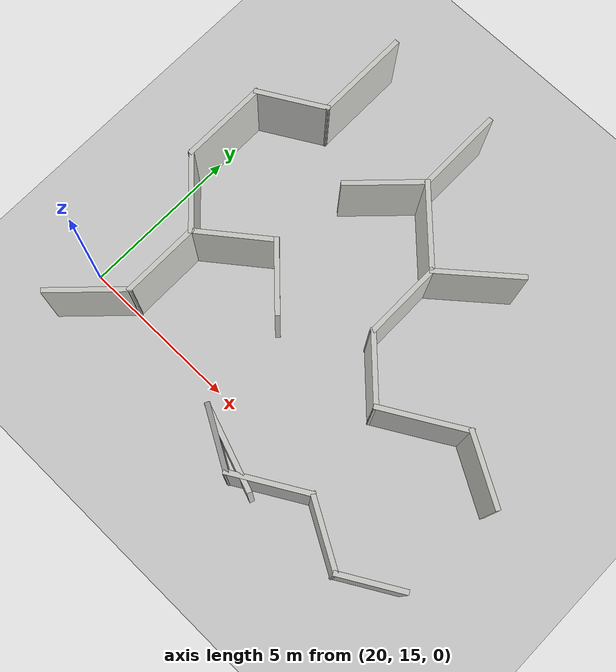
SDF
<sdf version="1.6">
 <world name="default">
  <model name="ground_plane">
   <pose>50 50 0 0 -0 0</pose>
   <static>1</static>
   <link name="link">
    <collision name="collision">
     <geometry><plane><normal>0 0 1</normal><size>100 100</size></plane></geometry>
     <surface><friction><ode><mu>100</mu><mu2>50</mu2></ode></friction></surface>
    </collision>
    <visual name="visual">
     <cast_shadows>0</cast_shadows>
     <geometry><plane><normal>0 0 1</normal><size>100 100</size></plane></geometry>
     <material>
      <script><uri>file://media/materials/scripts/gazebo.material</uri><name>Gazebo/Grey</name></script>
     </material>
    </visual>
   </link>
  </model>
  <model name="maze_1">
   <pose>17.3845 3.82743 0 0 -0 1.57331</pose>
   <link name="Wall_10">
    <collision name="Wall_10_Collision">
     <geometry><box><size>2 0.15 2.5</size></box></geometry>
     <pose>0 0 1.25 0 -0 0</pose>
    </collision>
    <visual name="Wall_10_Visual">
     <pose>0 0 1.25 0 -0 0</pose>
     <geometry><box><size>2 0.15 2.5</size></box></geometry>
     <material>
      <script><uri>file://media/materials/scripts/gazebo.material</uri><name>Gazebo/Grey</name></script>
      <ambient>1 1 1 1</ambient>
     </material>
     <meta><layer>0</layer></meta>
    </visual>
    <pose>10.0085 -8.88058 0 0 -0 -2.0944</pose>
   </link>
   <link name="Wall_11">
    <collision name="Wall_11_Collision">
     <geometry><box><size>2.5 0.15 2.5</size></box></geometry>
     <pose>0 0 1.25 0 -0 0</pose>
    </collision>
    <visual name="Wall_11_Visual">
     <pose>0 0 1.25 0 -0 0</pose>
     <geometry><box><size>2.5 0.15 2.5</size></box></geometry>
     <material>
      <script><uri>file://media/materials/scripts/gazebo.material</uri><name>Gazebo/CeilingTiled</name></script>
      <ambient>1 1 1 1</ambient>
     </material>
     <meta><layer>0</layer></meta>
    </visual>
    <pose>10.1335 -10.6992 0 0 -0 -1.0472</pose>
   </link>
   <link name="Wall_12">
    <collision name="Wall_12_Collision">
     <geometry><box><size>2.25 0.15 2.5</size></box></geometry>
     <pose>0 0 1.25 0 -0 0</pose>
    </collision>
    <visual name="Wall_12_Visual">
     <pose>0 0 1.25 0 -0 0</pose>
     <geometry><box><size>2.25 0.15 2.5</size></box></geometry>
     <material>
      <script><uri>file://media/materials/scripts/gazebo.material</uri><name>Gazebo/CeilingTiled</name></script>
      <ambient>1 1 1 1</ambient>
     </material>
     <meta><layer>0</layer></meta>
    </visual>
    <pose>10.196 -12.6261 0 0 -0 -2.0944</pose>
   </link>
   <link name="Wall_13">
    <collision name="Wall_13_Collision">
     <geometry><box><size>2 0.15 2.5</size></box></geometry>
     <pose>0 0 1.25 0 -0 0</pose>
    </collision>
    <visual name="Wall_13_Visual">
     <pose>0 0 1.25 0 -0 0</pose>
     <geometry><box><size>2 0.15 2.5</size></box></geometry>
     <material>
      <script><uri>file://media/materials/scripts/gazebo.material</uri><name>Gazebo/CeilingTiled</name></script>
      <ambient>1 1 1 1</ambient>
     </material>
     <meta><layer>0</layer></meta>
    </visual>
    <pose>10.1335 -14.3365 0 0 -0 -1.0472</pose>
   </link>
   <link name="Wall_144">
    <collision name="Wall_144_Collision">
     <geometry><box><size>2.5 0.15 2.5</size></box></geometry>
     <pose>0 0 1.25 0 -0 0</pose>
    </collision>
    <visual name="Wall_144_Visual">
     <pose>0 0 1.25 0 -0 0</pose>
     <geometry><box><size>2.5 0.15 2.5</size></box></geometry>
     <material>
      <script><uri>file://media/materials/scripts/gazebo.material</uri><name>Gazebo/CeilingTiled</name></script>
      <ambient>1 1 1 1</ambient>
     </material>
     <meta><layer>0</layer></meta>
    </visual>
    <pose>10.4108 -3.45027 0 0 -0 -0.785398</pose>
   </link>
   <link name="Wall_145">
    <collision name="Wall_145_Collision">
     <geometry><box><size>2.5 0.15 2.5</size></box></geometry>
     <pose>0 0 1.25 0 -0 0</pose>
    </collision>
    <visual name="Wall_145_Visual">
     <pose>0 0 1.25 0 -0 0</pose>
     <geometry><box><size>2.5 0.15 2.5</size></box></geometry>
     <material>
      <script><uri>file://media/materials/scripts/gazebo.material</uri><name>Gazebo/CeilingTiled</name></script>
      <ambient>1 1 1 1</ambient>
     </material>
     <meta><layer>0</layer></meta>
    </visual>
    <pose>12.4166 -4.28112 0 0 -0 0</pose>
   </link>
   <link name="Wall_146">
    <collision name="Wall_146_Collision">
     <geometry><box><size>2.5 0.15 2.5</size></box></geometry>
     <pose>0 0 1.25 0 -0 0</pose>
    </collision>
    <visual name="Wall_146_Visual">
     <pose>0 0 1.25 0 -0 0</pose>
     <geometry><box><size>2.5 0.15 2.5</size></box></geometry>
     <material>
      <script><uri>file://media/materials/scripts/gazebo.material</uri><name>Gazebo/CeilingTiled</name></script>
      <ambient>1 1 1 1</ambient>
     </material>
     <meta><layer>0</layer></meta>
    </visual>
    <pose>14.4225 -3.45027 0 0 -0 0.785398</pose>
   </link>
   <link name="Wall_147">
    <collision name="Wall_147_Collision">
     <geometry><box><size>2.75 0.15 2.5</size></box></geometry>
     <pose>0 0 1.25 0 -0 0</pose>
    </collision>
    <visual name="Wall_147_Visual">
     <pose>0 0 1.25 0 -0 0</pose>
     <geometry><box><size>2.75 0.15 2.5</size></box></geometry>
     <material>
      <script><uri>file://media/materials/scripts/gazebo.material</uri><name>Gazebo/CeilingTiled</name></script>
      <ambient>1 1 1 1</ambient>
     </material>
     <meta><layer>0</layer></meta>
    </visual>
    <pose>16.5533 -2.61942 0 0 -0 0</pose>
   </link>
   <link name="Wall_148">
    <collision name="Wall_148_Collision">
     <geometry><box><size>2.25 0.15 2.5</size></box></geometry>
     <pose>0 0 1.25 0 -0 0</pose>
    </collision>
    <visual name="Wall_148_Visual">
     <pose>0 0 1.25 0 -0 0</pose>
     <geometry><box><size>2.25 0.15 2.5</size></box></geometry>
     <material>
      <script><uri>file://media/materials/scripts/gazebo.material</uri><name>Gazebo/CeilingTiled</name></script>
      <ambient>1 1 1 1</ambient>
     </material>
     <meta><layer>0</layer></meta>
    </visual>
    <pose>18.3783 -3.52874 0 0 -0 -1.0472</pose>
   </link>
   <link name="Wall_149">
    <collision name="Wall_149_Collision">
     <geometry><box><size>3 0.15 2.5</size></box></geometry>
     <pose>0 0 1.25 0 -0 0</pose>
    </collision>
    <visual name="Wall_149_Visual">
     <pose>0 0 1.25 0 -0 0</pose>
     <geometry><box><size>3 0.15 2.5</size></box></geometry>
     <material>
      <script><uri>file://media/materials/scripts/gazebo.material</uri><name>Gazebo/CeilingTiled</name></script>
      <ambient>1 1 1 1</ambient>
     </material>
     <meta><layer>0</layer></meta>
    </visual>
    <pose>20.3283 -4.43807 0 0 -0 0</pose>
   </link>
   <link name="Wall_175">
    <collision name="Wall_175_Collision">
     <geometry><box><size>2.25 0.15 2.5</size></box></geometry>
     <pose>0 0 1.25 0 -0 0</pose>
    </collision>
    <visual name="Wall_175_Visual">
     <pose>0 0 1.25 0 -0 0</pose>
     <geometry><box><size>2.25 0.15 2.5</size></box></geometry>
     <material>
      <script><uri>file://media/materials/scripts/gazebo.material</uri><name>Gazebo/CeilingTiled</name></script>
      <ambient>1 1 1 1</ambient>
     </material>
     <meta><layer>0</layer></meta>
    </visual>
    <pose>14.3133 -6.90169 0 0 -0 0.785398</pose>
   </link>
   <link name="Wall_176">
    <collision name="Wall_176_Collision">
     <geometry><box><size>2.53139 0.15 2.5</size></box></geometry>
     <pose>0 0 1.25 0 -0 0</pose>
    </collision>
    <visual name="Wall_176_Visual">
     <pose>0 0 1.25 0 -0 0</pose>
     <geometry><box><size>2.53139 0.15 2.5</size></box></geometry>
     <material>
      <script><uri>file://media/materials/scripts/gazebo.material</uri><name>Gazebo/CeilingTiled</name></script>
      <ambient>1 1 1 1</ambient>
     </material>
     <meta><layer>0</layer></meta>
    </visual>
    <pose>14.3237 -5.22017 0 0 -0 2.23296</pose>
   </link>
   <link name="Wall_178">
    <collision name="Wall_178_Collision">
     <geometry><box><size>2.5 0.15 2.5</size></box></geometry>
     <pose>0 0 1.25 0 -0 0</pose>
    </collision>
    <visual name="Wall_178_Visual">
     <pose>0 0 1.25 0 -0 0</pose>
     <geometry><box><size>2.5 0.15 2.5</size></box></geometry>
     <material>
      <script><uri>file://media/materials/scripts/gazebo.material</uri><name>Gazebo/CeilingTiled</name></script>
      <ambient>1 1 1 1</ambient>
     </material>
     <meta><layer>0</layer></meta>
    </visual>
    <pose>18.3889 -7.17307 0 0 -0 -0.785398</pose>
   </link>
   <link name="Wall_179">
    <collision name="Wall_179_Collision">
     <geometry><box><size>2.75 0.15 2.5</size></box></geometry>
     <pose>0 0 1.25 0 -0 0</pose>
    </collision>
    <visual name="Wall_179_Visual">
     <pose>0 0 1.25 0 -0 0</pose>
     <geometry><box><size>2.75 0.15 2.5</size></box></geometry>
     <material>
      <script><uri>file://media/materials/scripts/gazebo.material</uri><name>Gazebo/CeilingTiled</name></script>
      <ambient>1 1 1 1</ambient>
     </material>
     <meta><layer>0</layer></meta>
    </visual>
    <pose>18.3005 -8.92316 0 0 -0 -2.35619</pose>
   </link>
   <link name="Wall_180">
    <collision name="Wall_180_Collision">
     <geometry><box><size>2.5 0.15 2.5</size></box></geometry>
     <pose>0 0 1.25 0 -0 0</pose>
    </collision>
    <visual name="Wall_180_Visual">
     <pose>0 0 1.25 0 -0 0</pose>
     <geometry><box><size>2.5 0.15 2.5</size></box></geometry>
     <material>
      <script><uri>file://media/materials/scripts/gazebo.material</uri><name>Gazebo/CeilingTiled</name></script>
      <ambient>1 1 1 1</ambient>
     </material>
     <meta><layer>0</layer></meta>
    </visual>
    <pose>16.2062 -9.8424 0 0 -0 3.14159</pose>
   </link>
   <link name="Wall_181">
    <collision name="Wall_181_Collision">
     <geometry><box><size>2.25 0.15 2.5</size></box></geometry>
     <pose>0 0 1.25 0 -0 0</pose>
    </collision>
    <visual name="Wall_181_Visual">
     <pose>0 0 1.25 0 -0 0</pose>
     <geometry><box><size>2.25 0.15 2.5</size></box></geometry>
     <material>
      <script><uri>file://media/materials/scripts/gazebo.material</uri><name>Gazebo/CeilingTiled</name></script>
      <ambient>1 1 1 1</ambient>
     </material>
     <meta><layer>0</layer></meta>
    </visual>
    <pose>14.2888 -10.5849 0 0 -0 -2.35619</pose>
   </link>
   <link name="Wall_182">
    <collision name="Wall_182_Collision">
     <geometry><box><size>2.75 0.15 2.5</size></box></geometry>
     <pose>0 0 1.25 0 -0 0</pose>
    </collision>
    <visual name="Wall_182_Visual">
     <pose>0 0 1.25 0 -0 0</pose>
     <geometry><box><size>2.75 0.15 2.5</size></box></geometry>
     <material>
      <script><uri>file://media/materials/scripts/gazebo.material</uri><name>Gazebo/CeilingTiled</name></script>
      <ambient>1 1 1 1</ambient>
     </material>
     <meta><layer>0</layer></meta>
    </visual>
    <pose>14.1963 -12.4532 0 0 -0 -1.0472</pose>
   </link>
   <link name="Wall_183">
    <collision name="Wall_183_Collision">
     <geometry><box><size>2.25 0.15 2.5</size></box></geometry>
     <pose>0 0 1.25 0 -0 0</pose>
    </collision>
    <visual name="Wall_183_Visual">
     <pose>0 0 1.25 0 -0 0</pose>
     <geometry><box><size>2.25 0.15 2.5</size></box></geometry>
     <material>
      <script><uri>file://media/materials/scripts/gazebo.material</uri><name>Gazebo/CeilingTiled</name></script>
      <ambient>1 1 1 1</ambient>
     </material>
     <meta><layer>0</layer></meta>
    </visual>
    <pose>14.3213 -14.4883 0 0 -0 -2.0944</pose>
   </link>
   <link name="Wall_185">
    <collision name="Wall_185_Collision">
     <geometry><box><size>2.70016 0.15 2.5</size></box></geometry>
     <pose>0 0 1.25 0 -0 0</pose>
    </collision>
    <visual name="Wall_185_Visual">
     <pose>0 0 1.25 0 -0 0</pose>
     <geometry><box><size>2.70016 0.15 2.5</size></box></geometry>
     <material>
      <script><uri>file://media/materials/scripts/gazebo.material</uri><name>Gazebo/CeilingTiled</name></script>
      <ambient>1 1 1 1</ambient>
     </material>
     <meta><layer>0</layer></meta>
    </visual>
    <pose>18.202 -10.8182 0 0 -0 2.27007</pose>
   </link>
   <link name="Wall_187">
    <collision name="Wall_187_Collision">
     <geometry><box><size>2.75 0.15 2.5</size></box></geometry>
     <pose>0 0 1.25 0 -0 0</pose>
    </collision>
    <visual name="Wall_187_Visual">
     <pose>0 0 1.25 0 -0 0</pose>
     <geometry><box><size>2.75 0.15 2.5</size></box></geometry>
     <material>
      <script><uri>file://media/materials/scripts/gazebo.material</uri><name>Gazebo/CeilingTiled</name></script>
      <ambient>1 1 1 1</ambient>
     </material>
     <meta><layer>0</layer></meta>
    </visual>
    <pose>20.5197 -8.00392 0 0 -0 0</pose>
   </link>
   <link name="Wall_6">
    <collision name="Wall_6_Collision">
     <geometry><box><size>2.65885 0.15 2.5</size></box></geometry>
     <pose>0 0 1.25 0 -0 0</pose>
    </collision>
    <visual name="Wall_6_Visual">
     <pose>0 0 1.25 0 -0 0</pose>
     <geometry><box><size>2.65885 0.15 2.5</size></box></geometry>
     <material>
      <script><uri>file://media/materials/scripts/gazebo.material</uri><name>Gazebo/CeilingTiled</name></script>
      <ambient>1 1 1 1</ambient>
     </material>
     <meta><layer>0</layer></meta>
    </visual>
    <pose>10.0462 -9.25983 0 0 -0 -1.91623</pose>
   </link>
   <static>1</static>
  </model>
 </world>
</sdf>
